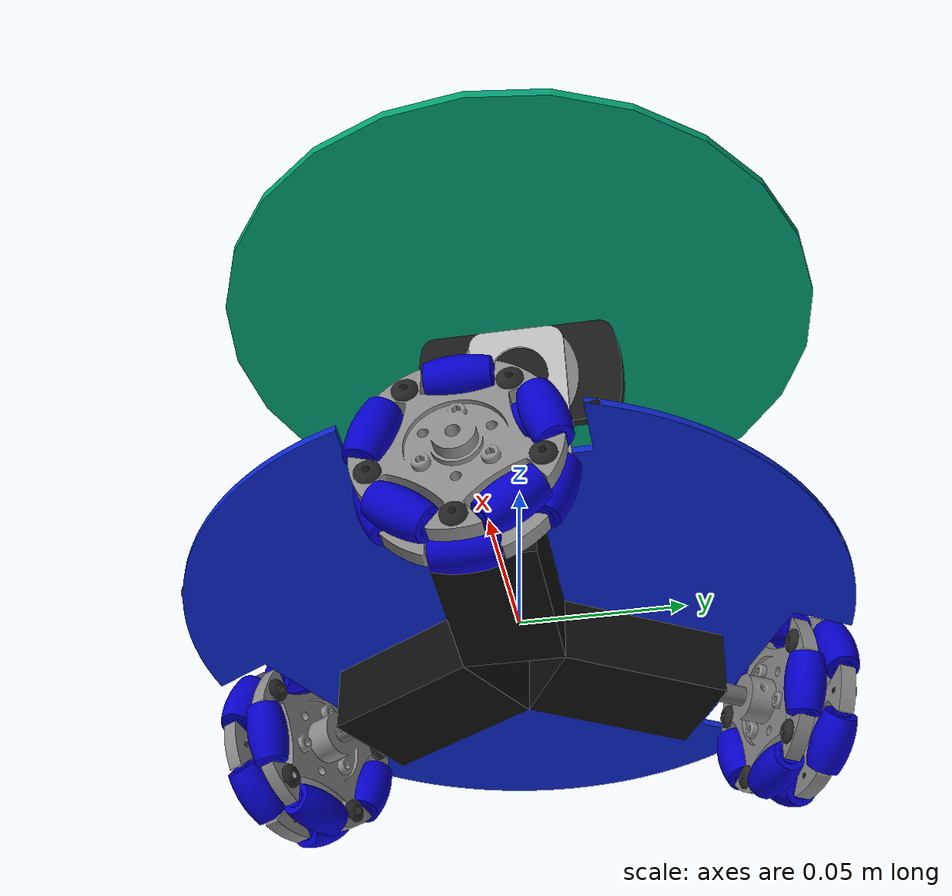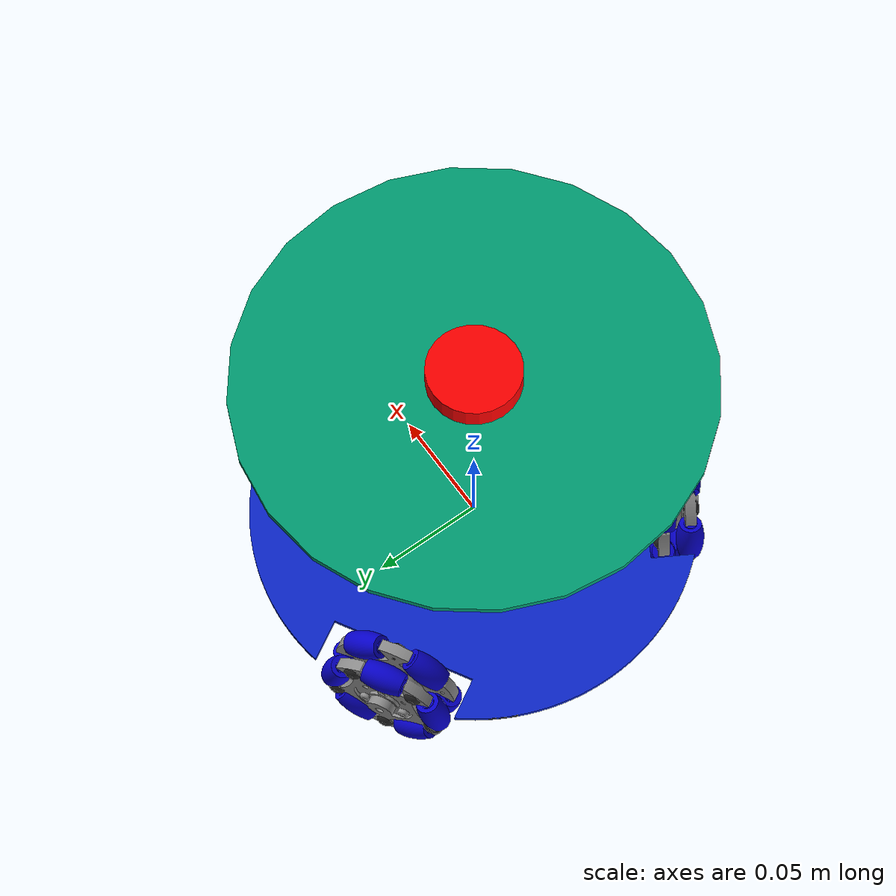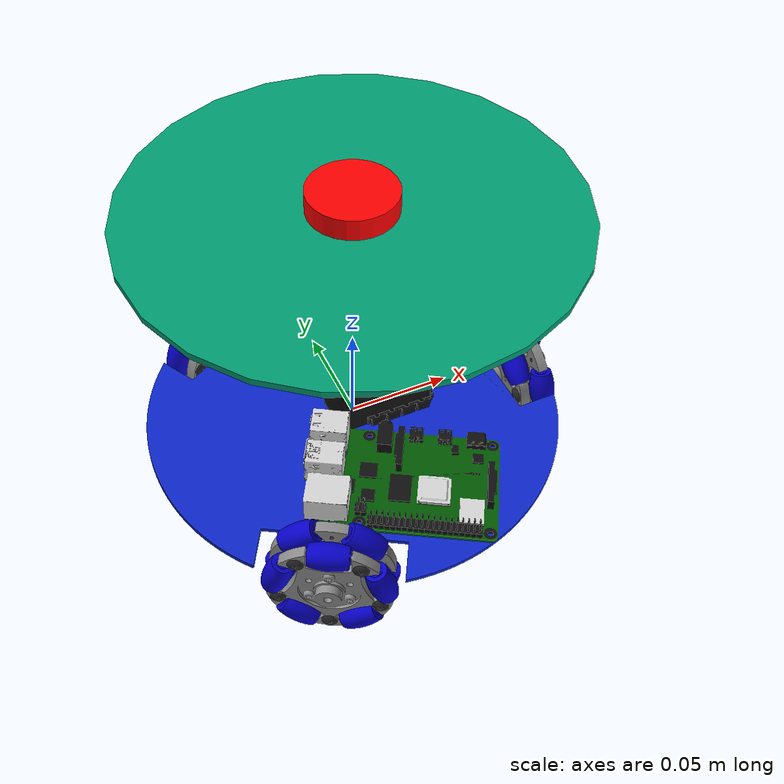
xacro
<?xml version="1.0"?>
<!--
Copyright (c) 2025 Yohan Prakoso
Copyright (c) 2026 Francisco Martín Rico
SPDX-License-Identifier: MIT AND Apache-2.0
-->

<robot name="omni_robot" xmlns:xacro="http://ros.org/wiki/xacro">

  <!-- xacro property -->
  <xacro:property name="M_PI" value="3.14159274" />

  <!-- xacro include file -->
  <xacro:include filename="$(find easynav_playground_omni_description)/urdf/3w/base/base.urdf.xacro" />  <!--base-->
  <xacro:include filename="$(find easynav_playground_omni_description)/urdf/3w/base_layer/base_layer.urdf.xacro" />  <!--base-->
  <xacro:include filename="$(find easynav_playground_omni_description)/urdf/3w/camera/camera.urdf.xacro" />   <!--camera-->
  <xacro:include filename="$(find easynav_playground_omni_description)/urdf/3w/omni_wheel/omni_wheel.urdf.xacro" />   <!--omni-wheel-->
  <xacro:include filename="$(find easynav_playground_omni_description)/urdf/3w/roller/roller.urdf.xacro" />   <!--roller-->
  <xacro:include filename="$(find easynav_playground_omni_description)/urdf/3w/IMU/IMU.urdf.xacro" />   <!--IMU-->
  <xacro:include filename="$(find easynav_playground_omni_description)/urdf/3w/laser/laser.urdf.xacro" />   <!-- Laser -->
  <xacro:include filename="$(find easynav_playground_omni_description)/urdf/3w/camera_bracket/camera_bracket.urdf.xacro" />   <!--camera_bracket-->
  <xacro:include filename="$(find easynav_playground_omni_description)/urdf/3w/gazebo_plugins.urdf.xacro" />   <!--Gazebo Plugins -->
  <xacro:include filename="$(find easynav_playground_omni_description)/urdf/3w/ros2_control.urdf.xacro" />   <!-- Ros2 Control Plugins -->

  <!-- =============== Link & Joint =============== -->
  <!-- Base -->
  <link name="base_footprint" />
  <xacro:base_v0 parent="base_footprint">
    <origin xyz="0 0 0" rpy="0 0 ${-M_PI/2}" />
  </xacro:base_v0>

  <!-- Base -->
  <xacro:base_gazebo_v0 />

  <!-- Base Layer -->
  <xacro:base_layer prefix="first" parent="base_footprint" xyz="0 0 0.125" rpy="0 0 0" />

  <!-- Wheel -->
  <!-- 1st wheel -->
  <xacro:wheel_v0 suffix="1" parent="base_link">
    <origin xyz="0 0.088 -0.01" rpy="0 0 3.141593" />
    <axis xyz="0 1 0" />
  </xacro:wheel_v0>

  <xacro:roller_v0 prefix="r1_F" parent="omni_wheel_link_1">
    <origin xyz="0 -0.006 0.024063" rpy="0 0 1.570796" />
    <axis xyz="0 1 0" />
  </xacro:roller_v0>
  <xacro:roller_v0 prefix="r2_F" parent="omni_wheel_link_1">
    <origin xyz="-0.0228853 -0.006 0.0074359" rpy="-1.256637 0 1.570796" />
    <axis xyz="0 1 0" />
  </xacro:roller_v0>
  <xacro:roller_v0 prefix="r3_F" parent="omni_wheel_link_1">
    <origin xyz="-0.0141439 -0.006 -0.0194674" rpy="-2.513274 0 1.570796" />
    <axis xyz="0 1 0" />
  </xacro:roller_v0>
  <xacro:roller_v0 prefix="r4_F" parent="omni_wheel_link_1">
    <origin xyz="0.0141439 -0.006 -0.0194674" rpy="-3.769911 0 1.570796" />
    <axis xyz="0 1 0" />
  </xacro:roller_v0>
  <xacro:roller_v0 prefix="r5_F" parent="omni_wheel_link_1">
    <origin xyz="0.0228853 -0.006 0.0074359" rpy="-5.026548 0 1.570796" />
    <axis xyz="0 1 0" />
  </xacro:roller_v0>

  <xacro:roller_v0 prefix="r6_F" parent="omni_wheel_link_1">
    <origin xyz="0 0.006 -0.024063" rpy="0 0 1.570796" />
    <axis xyz="0 1 0" />
  </xacro:roller_v0>
  <xacro:roller_v0 prefix="r7_F" parent="omni_wheel_link_1">
    <origin xyz="0.0228853 0.006 -0.0074359" rpy="-1.256637 0 1.570796" />
    <axis xyz="0 1 0" />
  </xacro:roller_v0>
  <xacro:roller_v0 prefix="r8_F" parent="omni_wheel_link_1">
    <origin xyz="0.0141439 0.006 0.0194674" rpy="-2.513274 0 1.570796" />
    <axis xyz="0 1 0" />
  </xacro:roller_v0>
  <xacro:roller_v0 prefix="r9_F" parent="omni_wheel_link_1">
    <origin xyz="-0.0141439 0.006 0.0194674" rpy="-3.769911 0 1.570796" />
    <axis xyz="0 1 0" />
  </xacro:roller_v0>
  <xacro:roller_v0 prefix="r10_F" parent="omni_wheel_link_1">
    <origin xyz="-0.0228853 0.006 -0.0074359" rpy="-5.026548 0 1.570796" />
    <axis xyz="0 1 0" />
  </xacro:roller_v0>

  <!-- 2nd wheel -->
  <xacro:wheel_v0 suffix="2" parent="base_link">
    <origin xyz="-0.0762 -0.044 -0.01" rpy="0 0 5.235988" />
    <axis xyz="0 1 0" />
  </xacro:wheel_v0>

  <xacro:roller_v0 prefix="r1_S" parent="omni_wheel_link_2">
    <origin xyz="0 -0.006 0.024063" rpy="0 0 1.570796" />
    <axis xyz="0 1 0" />
  </xacro:roller_v0>
  <xacro:roller_v0 prefix="r2_S" parent="omni_wheel_link_2">
    <origin xyz="-0.0228853 -0.006 0.0074359" rpy="-1.256637 0 1.570796" />
    <axis xyz="0 1 0" />
  </xacro:roller_v0>
  <xacro:roller_v0 prefix="r3_S" parent="omni_wheel_link_2">
    <origin xyz="-0.0141439 -0.006 -0.0194674" rpy="-2.513274 0 1.570796" />
    <axis xyz="0 1 0" />
  </xacro:roller_v0>
  <xacro:roller_v0 prefix="r4_S" parent="omni_wheel_link_2">
    <origin xyz="0.0141439 -0.006 -0.0194674" rpy="-3.769911 0 1.570796" />
    <axis xyz="0 1 0" />
  </xacro:roller_v0>
  <xacro:roller_v0 prefix="r5_S" parent="omni_wheel_link_2">
    <origin xyz="0.0228853 -0.006 0.0074359" rpy="-5.026548 0 1.570796" />
    <axis xyz="0 1 0" />
  </xacro:roller_v0>

  <xacro:roller_v0 prefix="r6_S" parent="omni_wheel_link_2">
    <origin xyz="0 0.006 -0.024063" rpy="0 0 1.570796" />
    <axis xyz="0 1 0" />
  </xacro:roller_v0>
  <xacro:roller_v0 prefix="r7_S" parent="omni_wheel_link_2">
    <origin xyz="0.0228853 0.006 -0.0074359" rpy="-1.256637 0 1.570796" />
    <axis xyz="0 1 0" />
  </xacro:roller_v0>
  <xacro:roller_v0 prefix="r8_S" parent="omni_wheel_link_2">
    <origin xyz="0.0141439 0.006 0.0194674" rpy="-2.513274 0 1.570796" />
    <axis xyz="0 1 0" />
  </xacro:roller_v0>
  <xacro:roller_v0 prefix="r9_S" parent="omni_wheel_link_2">
    <origin xyz="-0.0141439 0.006 0.0194674" rpy="-3.769911 0 1.570796" />
    <axis xyz="0 1 0" />
  </xacro:roller_v0>
  <xacro:roller_v0 prefix="r10_S" parent="omni_wheel_link_2">
    <origin xyz="-0.0228853 0.006 -0.0074359" rpy="-5.026548 0 1.570796" />
    <axis xyz="0 1 0" />
  </xacro:roller_v0>

  <!-- 3rd wheel -->
  <xacro:wheel_v0 suffix="3" parent="base_link">
    <origin xyz="0.0762 -0.044 -0.01" rpy="0 0 1.047197" />
    <axis xyz="0 1 0" />
  </xacro:wheel_v0>

  <xacro:roller_v0 prefix="r1_T" parent="omni_wheel_link_3">
    <origin xyz="0 -0.006 0.024063" rpy="0 0 1.570796" />
    <axis xyz="0 1 0" />
  </xacro:roller_v0>
  <xacro:roller_v0 prefix="r2_T" parent="omni_wheel_link_3">
    <origin xyz="-0.0228853 -0.006 0.0074359" rpy="-1.256637 0 1.570796" />
    <axis xyz="0 1 0" />
  </xacro:roller_v0>
  <xacro:roller_v0 prefix="r3_T" parent="omni_wheel_link_3">
    <origin xyz="-0.0141439 -0.006 -0.0194674" rpy="-2.513274 0 1.570796" />
    <axis xyz="0 1 0" />
  </xacro:roller_v0>
  <xacro:roller_v0 prefix="r4_T" parent="omni_wheel_link_3">
    <origin xyz="0.0141439 -0.006 -0.0194674" rpy="-3.769911 0 1.570796" />
    <axis xyz="0 1 0" />
  </xacro:roller_v0>
  <xacro:roller_v0 prefix="r5_T" parent="omni_wheel_link_3">
    <origin xyz="0.0228853 -0.006 0.0074359" rpy="-5.026548 0 1.570796" />
    <axis xyz="0 1 0" />
  </xacro:roller_v0>

  <xacro:roller_v0 prefix="r6_T" parent="omni_wheel_link_3">
    <origin xyz="0 0.006 -0.024063" rpy="0 0 1.570796" />
    <axis xyz="0 1 0" />
  </xacro:roller_v0>
  <xacro:roller_v0 prefix="r7_T" parent="omni_wheel_link_3">
    <origin xyz="0.0228853 0.006 -0.0074359" rpy="-1.256637 0 1.570796" />
    <axis xyz="0 1 0" />
  </xacro:roller_v0>
  <xacro:roller_v0 prefix="r8_T" parent="omni_wheel_link_3">
    <origin xyz="0.0141439 0.006 0.0194674" rpy="-2.513274 0 1.570796" />
    <axis xyz="0 1 0" />
  </xacro:roller_v0>
  <xacro:roller_v0 prefix="r9_T" parent="omni_wheel_link_3">
    <origin xyz="-0.0141439 0.006 0.0194674" rpy="-3.769911 0 1.570796" />
    <axis xyz="0 1 0" />
  </xacro:roller_v0>
  <xacro:roller_v0 prefix="r10_T" parent="omni_wheel_link_3">
    <origin xyz="-0.0228853 0.006 -0.0074359" rpy="-5.026548 0 1.570796" />
    <axis xyz="0 1 0" />
  </xacro:roller_v0>

  <!-- IMU -->
  <xacro:imu_v0 parent="base_footprint">
    <origin xyz="0 0 0" rpy="0 0 0" />
  </xacro:imu_v0>

  <!-- camera -->
  <xacro:camera_v0 prefix="main" parent="main_camera_bracket_link">
    <origin xyz="0 0 0.061" rpy="0 0.5236 0" />
  </xacro:camera_v0>

  <!-- camera bracket -->
  <xacro:camera_bracket_v0 prefix="main" parent="base_link">
    <origin xyz="0 0 0.039" rpy="0 0 1.570796" />
    <axis xyz="0 0 1" />
  </xacro:camera_bracket_v0>

  <!-- Laser -->
  <xacro:laser parent="first_base_layer_link" xyz="0 0 0.0065" rpy="0 0 0" />

  <!-- Wheel -->

  <!-- IMU -->
  <xacro:imu_gazebo_v0 />

  <!-- camera -->
  <xacro:camera_gazebo_v0 prefix="main" />

  <!-- camera -->
  <xacro:camera_bracket_gazebo_v0 prefix="main" />
</robot>

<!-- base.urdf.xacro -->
<!--
Copyright (c) 2025 Yohan Prakoso
Copyright (c) 2026 Francisco Martín Rico
SPDX-License-Identifier: MIT AND Apache-2.0
-->

<robot xmlns:xacro="http://ros.org/wiki/xacro">

  <xacro:include filename="$(find easynav_playground_omni_description)/urdf/3w/base/base.gazebo.xacro"/>

  <xacro:macro name="base_v0" params="parent *joint_origin">
	<joint name="base_link_joint" type="fixed">
	  <xacro:insert_block name="joint_origin"/>
	  <parent link="${parent}"/>
	  <child link="base_link"/>
	</joint>

	<link name="base_link">
	  <visual>
		<geometry>
		  <mesh filename="package://easynav_playground_omni_description/meshes/DAE/base/omni_wheel_body.dae"/>
		</geometry>
	  </visual>
	  <collision>
		<geometry>
		  <mesh filename="package://easynav_playground_omni_description/meshes/STL/base/base_link.stl"/>
		</geometry>
	  </collision>
	  <inertial>
		<origin xyz="0 0 0"/>
		<mass value="1.167"/>
		<inertia ixx="0.0016" ixy="0" ixz="0" iyy="0.0016" iyz="0" izz="0.0032" />
	  </inertial>
          <surface>
            <friction>
              <ode>
                <mu>0.8</mu>
                <mu2>0.8</mu2>
                <kp>1e15</kp>
                <kd>1e13</kd>
              </ode>
            </friction>
            <bounce>
              <restitution_coefficient>0.01</restitution_coefficient>
              <threshold>10</threshold>
            </bounce>
            <contact>
              <ode>
                <max_vel>0.01</max_vel>
                <minDepth>0</minDepth>
                <contact_surface_layer>0</contact_surface_layer>
              </ode>
            </contact>
          </surface>
	</link>
  </xacro:macro>

</robot>

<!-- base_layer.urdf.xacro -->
<!--
Copyright (c) 2025 Yohan Prakoso
Copyright (c) 2026 Francisco Martín Rico
SPDX-License-Identifier: MIT AND Apache-2.0
-->

<robot xmlns:xacro="http://ros.org/wiki/xacro">

  <xacro:include filename="$(find easynav_playground_omni_description)/urdf/3w/base_layer/base_layer.gazebo.xacro" />

  <xacro:macro name="base_layer" params="prefix parent xyz rpy">
    <joint name="${prefix}_base_layer_joint" type="fixed">
      <origin xyz="${xyz}" rpy="${rpy}"/>
      <parent link="${parent}" />
      <child link="${prefix}_base_layer_link" />
    </joint>

    <link name="${prefix}_base_layer_link">
      <visual>
        <geometry>
          <cylinder radius="0.1" length="0.003" />
        </geometry>
      </visual>
      <collision>
        <geometry>
          <cylinder radius="0.088" length="0.001" />
        </geometry>
      </collision>
      <inertial>
        <origin xyz="0 0 0" />
        <mass value="0.001" />
        <inertia ixx="0.0016" ixy="0" ixz="0" iyy="0.0016" iyz="0" izz="0.0032" />
      </inertial>
      <surface>
        <friction>
          <ode>
            <mu>0.8</mu>
            <mu2>0.8</mu2>
            <kp>1e15</kp>
            <kd>1e13</kd>
          </ode>
        </friction>
        <bounce>
          <restitution_coefficient>0.01</restitution_coefficient>
          <threshold>10</threshold>
        </bounce>
        <contact>
          <ode>
            <max_vel>0.01</max_vel>
            <minDepth>0</minDepth>
            <contact_surface_layer>0</contact_surface_layer>
          </ode>
        </contact>
      </surface>
    </link>
  </xacro:macro>
</robot>

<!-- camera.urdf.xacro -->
<!--
Copyright (c) 2025 Yohan Prakoso
Copyright (c) 2026 Francisco Martín Rico
SPDX-License-Identifier: MIT AND Apache-2.0
-->

<robot name="delirobo" xmlns:xacro="http://ros.org/wiki/xacro">

	<xacro:include filename="$(find easynav_playground_omni_description)/urdf/3w/camera/camera.gazebo.xacro" />

	<xacro:macro name="camera_v0" params="prefix parent *joint_origin">
		<joint name="${prefix}_camera_joint" type="fixed">
			<xacro:insert_block name="joint_origin" />
			<parent link="${parent}" />
			<child link="${prefix}_camera_link" />
		</joint>

		<link name="${prefix}_camera_link">
			<visual>
				<geometry>
					<mesh filename="package://easynav_playground_omni_description/meshes/DAE/camera/camera.dae" />
				</geometry>
			</visual>
			<collision>
				<geometry>
					<mesh filename="package://easynav_playground_omni_description/meshes/STL/camera/camera.stl" />
				</geometry>
			</collision>
			<inertial>
				<origin xyz="0 0 0" />
				<mass value="0.1" />
				<inertia ixx="0.00001" ixy="0" ixz="0" iyy="0.00001" iyz="0" izz="0.00001" />
			</inertial>
		</link>
	</xacro:macro>

</robot>

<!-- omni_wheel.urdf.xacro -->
<!--
Copyright (c) 2025 Yohan Prakoso
Copyright (c) 2026 Francisco Martín Rico
SPDX-License-Identifier: MIT AND Apache-2.0
-->

<robot xmlns:xacro="http://ros.org/wiki/xacro">

  <xacro:macro name="wheel_v0" params="suffix parent *joint_origin *joint_axis">
	<joint name="omni_wheel_joint_${suffix}" type="continuous">
	  <xacro:insert_block name="joint_origin"/>
	  <parent link="${parent}"/>
	  <child link="omni_wheel_link_${suffix}"/>
          <limit effort="100" velocity="100"/>
	  <xacro:insert_block name="joint_axis"/>
	</joint>

	<link name="omni_wheel_link_${suffix}">
	  <visual>
		<geometry>
		  <mesh filename="package://easynav_playground_omni_description/meshes/DAE/omni_wheel/omni_wheel.dae"/>
		</geometry>
	  </visual>
	  <collision>
		<geometry>
		  <mesh filename="package://easynav_playground_omni_description/meshes/STL/omni_wheel/omni_wheel.stl"/>
		</geometry>
	  </collision>
	  <inertial>
		<origin xyz="0.0 -0.011 -0.0"/>
		<mass value="0.25"/>
		<inertia ixx="0.00031" ixy="0" ixz="0" iyy="0.0005" iyz="0" izz="0.00031"/>
	  </inertial>
          <surface>
            <friction>
              <ode>
                <mu1>1.2</mu1>
                <mu2>1.2</mu2>
                <kp>1e15</kp>
                <kd>1e13</kd>
              </ode>
            </friction>
            <bounce>
              <restitution_coefficient>0.01</restitution_coefficient>
              <threshold>0</threshold>
            </bounce>
            <contact>
              <ode>
                <max_vel>10</max_vel>
              </ode>
            </contact>
          </surface>
	</link>
  </xacro:macro>

</robot>

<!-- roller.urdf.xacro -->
<!--
Copyright (c) 2025 Yohan Prakoso
Copyright (c) 2026 Francisco Martín Rico
SPDX-License-Identifier: MIT AND Apache-2.0
-->

<robot xmlns:xacro="http://ros.org/wiki/xacro">

  <xacro:include filename="$(find easynav_playground_omni_description)/urdf/3w/roller/roller.transmission.xacro" />
  <xacro:include filename="$(find easynav_playground_omni_description)/urdf/3w/roller/roller.gazebo.xacro" />

  <xacro:macro name="roller_v0" params="prefix parent *joint_origin *joint_axis">
    <joint name="${prefix}_roller_joint" type="continuous">
      <xacro:insert_block name="joint_origin" />
      <parent link="${parent}" />
      <child link="${prefix}_roller_link" />
      <xacro:insert_block name="joint_axis" />
    </joint>

    <link name="${prefix}_roller_link">
      <visual>
        <geometry>
          <mesh filename="package://easynav_playground_omni_description/meshes/DAE/roller/omni_roller.dae" />
        </geometry>
      </visual>
      <collision>
        <geometry>
          <mesh filename="package://easynav_playground_omni_description/meshes/STL/roller/roller.stl" />
        </geometry>
      </collision>
      <inertial>
        <origin xyz="0.0 0.0 0.0" />
        <mass value="0.009" />
        <inertia ixx="0.000001257" ixy="0" ixz="0" iyy="0.000000342" iyz="0" izz="0.000001257" />
      </inertial>
    </link>

  </xacro:macro>

</robot>

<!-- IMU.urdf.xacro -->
<!--
Copyright (c) 2025 Yohan Prakoso
Copyright (c) 2026 Francisco Martín Rico
SPDX-License-Identifier: MIT AND Apache-2.0
-->

<robot name="delirobo" xmlns:xacro="http://ros.org/wiki/xacro">

	<xacro:include filename="$(find easynav_playground_omni_description)/urdf/3w/IMU/IMU.gazebo.xacro" />

	<xacro:macro name="imu_v0" params=" parent *joint_origin">
		<joint name="imu_joint" type="fixed">
			<xacro:insert_block name="joint_origin" />
			<parent link="${parent}" />
			<child link="imu_link" />
		</joint>

		<link name="imu_link">
			<visual>
				<geometry>
					<mesh filename="package://easynav_playground_omni_description/meshes/DAE/IMU/IMU_sensor.dae" />
				</geometry>
			</visual>
			<inertial>
				<origin xyz="0 0 0" />
				<mass value="0.005" />
				<inertia ixx="1.67e-8" ixy="0" ixz="0" iyy="1.67e-8" iyz="0" izz="1.67e-8" />
			</inertial>
		</link>
	</xacro:macro>

</robot>

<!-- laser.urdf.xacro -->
<!--
Copyright (c) 2025 Yohan Prakoso
Copyright (c) 2026 Francisco Martín Rico
SPDX-License-Identifier: MIT AND Apache-2.0
-->

<robot xmlns:xacro="http://ros.org/wiki/xacro">
	<xacro:include filename="$(find easynav_playground_omni_description)/urdf/3w/laser/laser.gazebo.xacro" />

	<xacro:macro name="laser" params="parent xyz rpy">
		<link name="laser_scan">
			<visual>
				<geometry>
					<cylinder radius="0.02" length="0.01" />
				</geometry>
				<material name="red">
					<color rgba="1 0 0 1" />
				</material>
			</visual>
		</link>

		<joint name="laser_joint" type="fixed">
			<parent link="${parent}" />
			<child link="laser_scan" />
			<origin xyz="${xyz}" rpy="${rpy}" />
		</joint>

		<xacro:laser_gazebo />
	</xacro:macro>

</robot>

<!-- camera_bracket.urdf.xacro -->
<!--
Copyright (c) 2025 Yohan Prakoso
Copyright (c) 2026 Francisco Martín Rico
SPDX-License-Identifier: MIT AND Apache-2.0
-->

<robot xmlns:xacro="http://ros.org/wiki/xacro">

  <xacro:include filename="$(find easynav_playground_omni_description)/urdf/3w/camera_bracket/camera_bracket.transmission.xacro"/>
  <xacro:include filename="$(find easynav_playground_omni_description)/urdf/3w/camera_bracket/camera_bracket.gazebo.xacro"/>

  <xacro:macro name="camera_bracket_v0" params="prefix parent *joint_origin *joint_axis">
	<joint name="${prefix}_camera_bracket_joint" type="continuous">
	  <xacro:insert_block name="joint_origin"/>
	  <parent link="${parent}"/>
	  <child link="${prefix}_camera_bracket_link"/>
	  <xacro:insert_block name="joint_axis"/>
	</joint>

	<link name="${prefix}_camera_bracket_link">
	  <visual>
		<geometry>
		  <mesh filename="package://easynav_playground_omni_description/meshes/DAE/camera_bracket/camera_bracket.dae"/>
		</geometry>
	  </visual>
	  <collision>
		<geometry>
		  <mesh filename="package://easynav_playground_omni_description/meshes/STL/camera_bracket/camera_bracket.stl"/>
		</geometry>
	  </collision>
	  <inertial>
		<origin xyz="0 0 0"/>
		<mass value="0.01"/>
		<inertia ixx="0.00031" ixy="0" ixz="0" iyy="0.0005" iyz="0" izz="0.00031"/>
	  </inertial>
	</link>
  </xacro:macro>

</robot>
